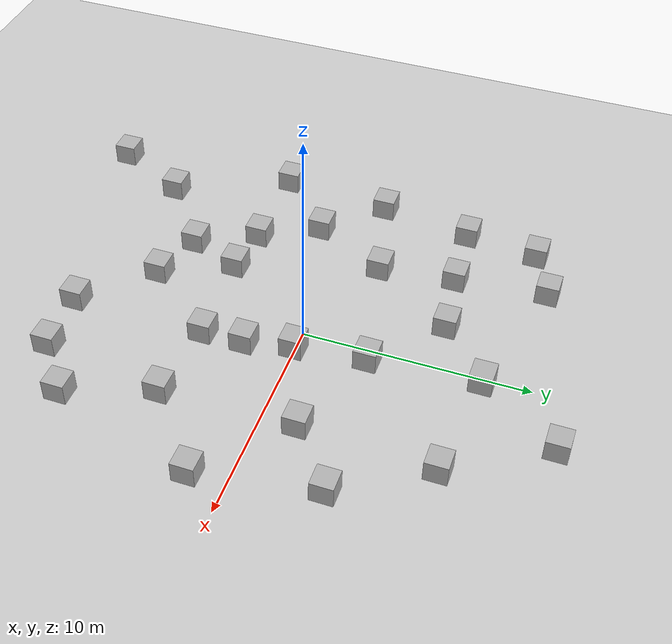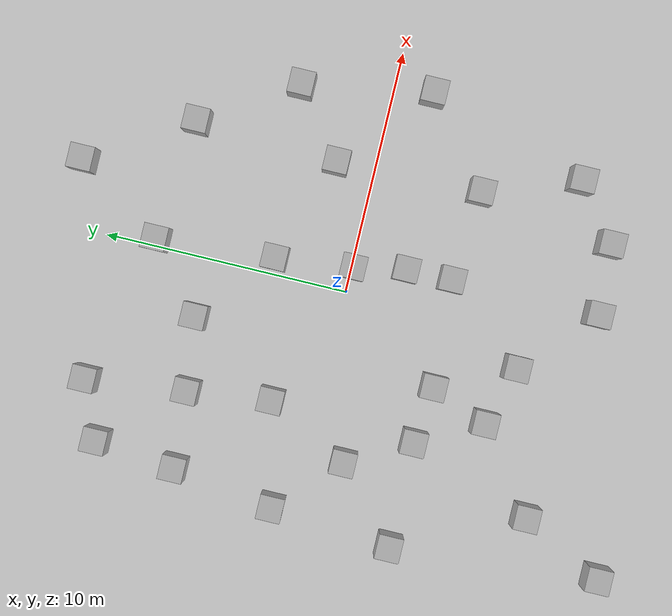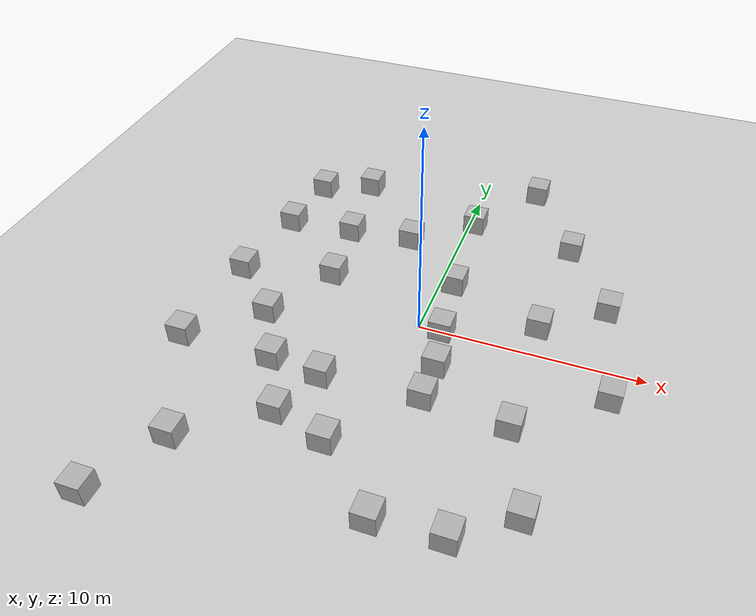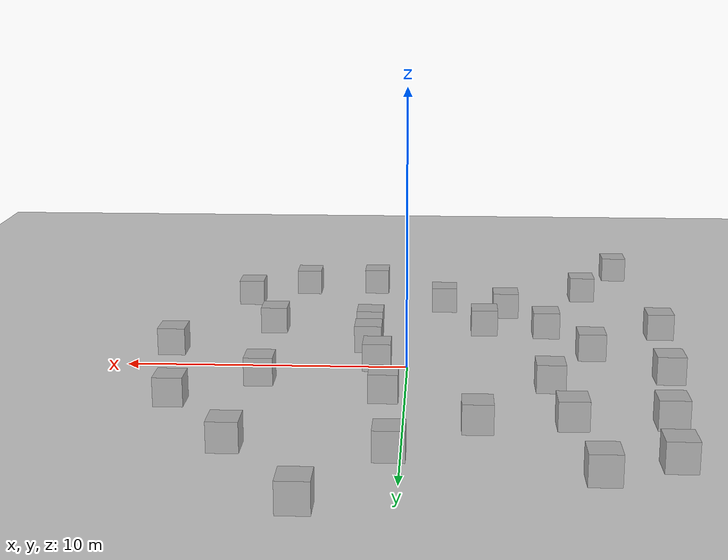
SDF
<sdf version='1.9'>
  <world name='empty'>
    <physics name='1ms' type='ignored'>
      <max_step_size>0.001</max_step_size>
      <real_time_factor>1</real_time_factor>
      <real_time_update_rate>1000</real_time_update_rate>
    </physics>
    <plugin name='gz::sim::systems::Physics' filename='ignition-gazebo-physics-system'/>
    <plugin name='gz::sim::systems::UserCommands' filename='ignition-gazebo-user-commands-system'/>
    <plugin name='gz::sim::systems::SceneBroadcaster' filename='ignition-gazebo-scene-broadcaster-system'/>
    <plugin name='gz::sim::systems::Contact' filename='ignition-gazebo-contact-system'/>
    <gravity>0 0 -9.8</gravity>
    <magnetic_field>6e-06 2.3e-05 -4.2e-05</magnetic_field>
    <atmosphere type='adiabatic'/>
    <scene>
      <ambient>0.4 0.4 0.4 1</ambient>
      <background>0.7 0.7 0.7 1</background>
      <shadows>true</shadows>
    </scene>
    <model name='ground_plane'>
      <static>true</static>
      <link name='link'>
        <collision name='collision'>
          <geometry>
            <plane>
              <normal>0 0 1</normal>
              <size>100 100</size>
            </plane>
          </geometry>
          <surface>
            <friction>
              <ode/>
            </friction>
            <bounce/>
            <contact/>
          </surface>
        </collision>
        <visual name='visual'>
          <geometry>
            <plane>
              <normal>0 0 1</normal>
              <size>100 100</size>
            </plane>
          </geometry>
          <material>
            <ambient>0.8 0.8 0.8 1</ambient>
            <diffuse>0.8 0.8 0.8 1</diffuse>
            <specular>0.8 0.8 0.8 1</specular>
          </material>
        </visual>
        <pose>0 0 0 0 -0 0</pose>
        <inertial>
          <pose>0 0 0 0 -0 0</pose>
          <mass>1</mass>
          <inertia>
            <ixx>1</ixx>
            <ixy>0</ixy>
            <ixz>0</ixz>
            <iyy>1</iyy>
            <iyz>0</iyz>
            <izz>1</izz>
          </inertia>
        </inertial>
        <enable_wind>false</enable_wind>
      </link>
      <pose>0 0 0 0 -0 0</pose>
      <self_collide>false</self_collide>
    </model>
    <model name='box_7_2'>
      <pose>1.49673 -4.03119 0.5 0 -0 0</pose>
      <link name='box_link'>
        <inertial>
          <inertia>
            <ixx>0.16666</ixx>
            <ixy>0</ixy>
            <ixz>0</ixz>
            <iyy>0.16666</iyy>
            <iyz>0</iyz>
            <izz>0.16666</izz>
          </inertia>
          <mass>1</mass>
        </inertial>
        <collision name='box_collision'>
          <geometry>
            <box>
              <size>1 1 1</size>
            </box>
          </geometry>
          <surface>
            <friction>
              <ode/>
            </friction>
            <bounce/>
            <contact/>
          </surface>
        </collision>
        <visual name='box_visual'>
          <geometry>
            <box>
              <size>1 1 1</size>
            </box>
          </geometry>
          <material>
            <ambient>0.3 0.3 0.3 1</ambient>
            <diffuse>0.7 0.7 0.7 1</diffuse>
            <specular>1 1 1 1</specular>
          </material>
        </visual>
      </link>
      <static>false</static>
      <self_collide>false</self_collide>
    </model>
    <model name='box'>
      <pose>1.47453 -2.15377 0.5 0 -0 0</pose>
      <link name='box_link'>
        <inertial>
          <inertia>
            <ixx>0.16666</ixx>
            <ixy>0</ixy>
            <ixz>0</ixz>
            <iyy>0.16666</iyy>
            <iyz>0</iyz>
            <izz>0.16666</izz>
          </inertia>
          <mass>1</mass>
          <pose>0 0 0 0 -0 0</pose>
        </inertial>
        <collision name='box_collision'>
          <geometry>
            <box>
              <size>1 1 1</size>
            </box>
          </geometry>
          <surface>
            <friction>
              <ode/>
            </friction>
            <bounce/>
            <contact/>
          </surface>
        </collision>
        <visual name='box_visual'>
          <geometry>
            <box>
              <size>1 1 1</size>
            </box>
          </geometry>
          <material>
            <ambient>0.3 0.3 0.3 1</ambient>
            <diffuse>0.7 0.7 0.7 1</diffuse>
            <specular>1 1 1 1</specular>
          </material>
        </visual>
        <pose>0 0 0 0 -0 0</pose>
        <enable_wind>false</enable_wind>
      </link>
      <static>false</static>
      <self_collide>false</self_collide>
    </model>
    <model name='box_0'>
      <pose>1.06167 -0.060778 0.5 0 -0 0</pose>
      <link name='box_link'>
        <inertial>
          <inertia>
            <ixx>0.16666</ixx>
            <ixy>0</ixy>
            <ixz>0</ixz>
            <iyy>0.16666</iyy>
            <iyz>0</iyz>
            <izz>0.16666</izz>
          </inertia>
          <mass>1</mass>
          <pose>0 0 0 0 -0 0</pose>
        </inertial>
        <collision name='box_collision'>
          <geometry>
            <box>
              <size>1 1 1</size>
            </box>
          </geometry>
          <surface>
            <friction>
              <ode/>
            </friction>
            <bounce/>
            <contact/>
          </surface>
        </collision>
        <visual name='box_visual'>
          <geometry>
            <box>
              <size>1 1 1</size>
            </box>
          </geometry>
          <material>
            <ambient>0.3 0.3 0.3 1</ambient>
            <diffuse>0.7 0.7 0.7 1</diffuse>
            <specular>1 1 1 1</specular>
          </material>
        </visual>
        <pose>0 0 0 0 -0 0</pose>
        <enable_wind>false</enable_wind>
      </link>
      <static>false</static>
      <self_collide>false</self_collide>
    </model>
    <model name='box_1'>
      <pose>0.702668 3.1009 0.5 0 -0 0</pose>
      <link name='box_link'>
        <inertial>
          <inertia>
            <ixx>0.16666</ixx>
            <ixy>0</ixy>
            <ixz>0</ixz>
            <iyy>0.16666</iyy>
            <iyz>0</iyz>
            <izz>0.16666</izz>
          </inertia>
          <mass>1</mass>
          <pose>0 0 0 0 -0 0</pose>
        </inertial>
        <collision name='box_collision'>
          <geometry>
            <box>
              <size>1 1 1</size>
            </box>
          </geometry>
          <surface>
            <friction>
              <ode/>
            </friction>
            <bounce/>
            <contact/>
          </surface>
        </collision>
        <visual name='box_visual'>
          <geometry>
            <box>
              <size>1 1 1</size>
            </box>
          </geometry>
          <material>
            <ambient>0.3 0.3 0.3 1</ambient>
            <diffuse>0.7 0.7 0.7 1</diffuse>
            <specular>1 1 1 1</specular>
          </material>
        </visual>
        <pose>0 0 0 0 -0 0</pose>
        <enable_wind>false</enable_wind>
      </link>
      <static>false</static>
      <self_collide>false</self_collide>
    </model>
    <model name='box_2'>
      <pose>-2.34659 5.69761 0.5 0 -0 0</pose>
      <link name='box_link'>
        <inertial>
          <inertia>
            <ixx>0.16666</ixx>
            <ixy>0</ixy>
            <ixz>0</ixz>
            <iyy>0.16666</iyy>
            <iyz>0</iyz>
            <izz>0.16666</izz>
          </inertia>
          <mass>1</mass>
          <pose>0 0 0 0 -0 0</pose>
        </inertial>
        <collision name='box_collision'>
          <geometry>
            <box>
              <size>1 1 1</size>
            </box>
          </geometry>
          <surface>
            <friction>
              <ode/>
            </friction>
            <bounce/>
            <contact/>
          </surface>
        </collision>
        <visual name='box_visual'>
          <geometry>
            <box>
              <size>1 1 1</size>
            </box>
          </geometry>
          <material>
            <ambient>0.3 0.3 0.3 1</ambient>
            <diffuse>0.7 0.7 0.7 1</diffuse>
            <specular>1 1 1 1</specular>
          </material>
        </visual>
        <pose>0 0 0 0 -0 0</pose>
        <enable_wind>false</enable_wind>
      </link>
      <static>false</static>
      <self_collide>false</self_collide>
    </model>
    <model name='box_3'>
      <pose>-4.91993 1.91379 0.5 0 -0 0</pose>
      <link name='box_link'>
        <inertial>
          <inertia>
            <ixx>0.16666</ixx>
            <ixy>0</ixy>
            <ixz>0</ixz>
            <iyy>0.16666</iyy>
            <iyz>0</iyz>
            <izz>0.16666</izz>
          </inertia>
          <mass>1</mass>
          <pose>0 0 0 0 -0 0</pose>
        </inertial>
        <collision name='box_collision'>
          <geometry>
            <box>
              <size>1 1 1</size>
            </box>
          </geometry>
          <surface>
            <friction>
              <ode/>
            </friction>
            <bounce/>
            <contact/>
          </surface>
        </collision>
        <visual name='box_visual'>
          <geometry>
            <box>
              <size>1 1 1</size>
            </box>
          </geometry>
          <material>
            <ambient>0.3 0.3 0.3 1</ambient>
            <diffuse>0.7 0.7 0.7 1</diffuse>
            <specular>1 1 1 1</specular>
          </material>
        </visual>
        <pose>0 0 0 0 -0 0</pose>
        <enable_wind>false</enable_wind>
      </link>
      <static>false</static>
      <self_collide>false</self_collide>
    </model>
    <model name='box_4'>
      <pose>-1.36374 -7.40387 0.5 0 -0 0</pose>
      <link name='box_link'>
        <inertial>
          <inertia>
            <ixx>0.16666</ixx>
            <ixy>0</ixy>
            <ixz>0</ixz>
            <iyy>0.16666</iyy>
            <iyz>0</iyz>
            <izz>0.16666</izz>
          </inertia>
          <mass>1</mass>
          <pose>0 0 0 0 -0 0</pose>
        </inertial>
        <collision name='box_collision'>
          <geometry>
            <box>
              <size>1 1 1</size>
            </box>
          </geometry>
          <surface>
            <friction>
              <ode/>
            </friction>
            <bounce/>
            <contact/>
          </surface>
        </collision>
        <visual name='box_visual'>
          <geometry>
            <box>
              <size>1 1 1</size>
            </box>
          </geometry>
          <material>
            <ambient>0.3 0.3 0.3 1</ambient>
            <diffuse>0.7 0.7 0.7 1</diffuse>
            <specular>1 1 1 1</specular>
          </material>
        </visual>
        <pose>0 0 0 0 -0 0</pose>
        <enable_wind>false</enable_wind>
      </link>
      <static>false</static>
      <self_collide>false</self_collide>
    </model>
    <model name='box_5'>
      <pose>-3.81354 -6.67417 0.5 0 -0 0</pose>
      <link name='box_link'>
        <inertial>
          <inertia>
            <ixx>0.16666</ixx>
            <ixy>0</ixy>
            <ixz>0</ixz>
            <iyy>0.16666</iyy>
            <iyz>0</iyz>
            <izz>0.16666</izz>
          </inertia>
          <mass>1</mass>
          <pose>0 0 0 0 -0 0</pose>
        </inertial>
        <collision name='box_collision'>
          <geometry>
            <box>
              <size>1 1 1</size>
            </box>
          </geometry>
          <surface>
            <friction>
              <ode/>
            </friction>
            <bounce/>
            <contact/>
          </surface>
        </collision>
        <visual name='box_visual'>
          <geometry>
            <box>
              <size>1 1 1</size>
            </box>
          </geometry>
          <material>
            <ambient>0.3 0.3 0.3 1</ambient>
            <diffuse>0.7 0.7 0.7 1</diffuse>
            <specular>1 1 1 1</specular>
          </material>
        </visual>
        <pose>0 0 0 0 -0 0</pose>
        <enable_wind>false</enable_wind>
      </link>
      <static>false</static>
      <self_collide>false</self_collide>
    </model>
    <model name='box_6'>
      <pose>-5.22989 -4.06244 0.5 0 0 -0</pose>
      <link name='box_link'>
        <inertial>
          <inertia>
            <ixx>0.16666</ixx>
            <ixy>0</ixy>
            <ixz>0</ixz>
            <iyy>0.16666</iyy>
            <iyz>0</iyz>
            <izz>0.16666</izz>
          </inertia>
          <mass>1</mass>
          <pose>0 0 0 0 -0 0</pose>
        </inertial>
        <collision name='box_collision'>
          <geometry>
            <box>
              <size>1 1 1</size>
            </box>
          </geometry>
          <surface>
            <friction>
              <ode/>
            </friction>
            <bounce/>
            <contact/>
          </surface>
        </collision>
        <visual name='box_visual'>
          <geometry>
            <box>
              <size>1 1 1</size>
            </box>
          </geometry>
          <material>
            <ambient>0.3 0.3 0.3 1</ambient>
            <diffuse>0.7 0.7 0.7 1</diffuse>
            <specular>1 1 1 1</specular>
          </material>
        </visual>
        <pose>0 0 0 0 -0 0</pose>
        <enable_wind>false</enable_wind>
      </link>
      <static>false</static>
      <self_collide>false</self_collide>
    </model>
    <model name='box_7'>
      <pose>5.3224 7.43893 0.5 0 0 -0</pose>
      <link name='box_link'>
        <inertial>
          <inertia>
            <ixx>0.16666</ixx>
            <ixy>0</ixy>
            <ixz>0</ixz>
            <iyy>0.16666</iyy>
            <iyz>0</iyz>
            <izz>0.16666</izz>
          </inertia>
          <mass>1</mass>
          <pose>0 0 0 0 -0 0</pose>
        </inertial>
        <collision name='box_collision'>
          <geometry>
            <box>
              <size>1 1 1</size>
            </box>
          </geometry>
          <surface>
            <friction>
              <ode/>
            </friction>
            <bounce/>
            <contact/>
          </surface>
        </collision>
        <visual name='box_visual'>
          <geometry>
            <box>
              <size>1 1 1</size>
            </box>
          </geometry>
          <material>
            <ambient>0.3 0.3 0.3 1</ambient>
            <diffuse>0.7 0.7 0.7 1</diffuse>
            <specular>1 1 1 1</specular>
          </material>
        </visual>
        <pose>0 0 0 0 -0 0</pose>
        <enable_wind>false</enable_wind>
      </link>
      <static>false</static>
      <self_collide>false</self_collide>
    </model>
    <model name='box_8'>
      <pose>-5.34342 5.31171 0.5 0 0 -0</pose>
      <link name='box_link'>
        <inertial>
          <inertia>
            <ixx>0.16666</ixx>
            <ixy>0</ixy>
            <ixz>0</ixz>
            <iyy>0.16666</iyy>
            <iyz>0</iyz>
            <izz>0.16666</izz>
          </inertia>
          <mass>1</mass>
          <pose>0 0 0 0 -0 0</pose>
        </inertial>
        <collision name='box_collision'>
          <geometry>
            <box>
              <size>1 1 1</size>
            </box>
          </geometry>
          <surface>
            <friction>
              <ode/>
            </friction>
            <bounce/>
            <contact/>
          </surface>
        </collision>
        <visual name='box_visual'>
          <geometry>
            <box>
              <size>1 1 1</size>
            </box>
          </geometry>
          <material>
            <ambient>0.3 0.3 0.3 1</ambient>
            <diffuse>0.7 0.7 0.7 1</diffuse>
            <specular>1 1 1 1</specular>
          </material>
        </visual>
        <pose>0 0 0 0 -0 0</pose>
        <enable_wind>false</enable_wind>
      </link>
      <static>false</static>
      <self_collide>false</self_collide>
    </model>
    <model name='box_9'>
      <pose>-6.67328 -1.49396 0.5 0 0 -0</pose>
      <link name='box_link'>
        <inertial>
          <inertia>
            <ixx>0.16666</ixx>
            <ixy>0</ixy>
            <ixz>0</ixz>
            <iyy>0.16666</iyy>
            <iyz>0</iyz>
            <izz>0.16666</izz>
          </inertia>
          <mass>1</mass>
          <pose>0 0 0 0 -0 0</pose>
        </inertial>
        <collision name='box_collision'>
          <geometry>
            <box>
              <size>1 1 1</size>
            </box>
          </geometry>
          <surface>
            <friction>
              <ode/>
            </friction>
            <bounce/>
            <contact/>
          </surface>
        </collision>
        <visual name='box_visual'>
          <geometry>
            <box>
              <size>1 1 1</size>
            </box>
          </geometry>
          <material>
            <ambient>0.3 0.3 0.3 1</ambient>
            <diffuse>0.7 0.7 0.7 1</diffuse>
            <specular>1 1 1 1</specular>
          </material>
        </visual>
        <pose>0 0 0 0 -0 0</pose>
        <enable_wind>false</enable_wind>
      </link>
      <static>false</static>
      <self_collide>false</self_collide>
    </model>
    <model name='box_10'>
      <pose>-2.88353 -4.31873 0.5 0 0 -0</pose>
      <link name='box_link'>
        <inertial>
          <inertia>
            <ixx>0.16666</ixx>
            <ixy>0</ixy>
            <ixz>0</ixz>
            <iyy>0.16666</iyy>
            <iyz>0</iyz>
            <izz>0.16666</izz>
          </inertia>
          <mass>1</mass>
          <pose>0 0 0 0 -0 0</pose>
        </inertial>
        <collision name='box_collision'>
          <geometry>
            <box>
              <size>1 1 1</size>
            </box>
          </geometry>
          <surface>
            <friction>
              <ode/>
            </friction>
            <bounce/>
            <contact/>
          </surface>
        </collision>
        <visual name='box_visual'>
          <geometry>
            <box>
              <size>1 1 1</size>
            </box>
          </geometry>
          <material>
            <ambient>0.3 0.3 0.3 1</ambient>
            <diffuse>0.7 0.7 0.7 1</diffuse>
            <specular>1 1 1 1</specular>
          </material>
        </visual>
        <pose>0 0 0 0 -0 0</pose>
        <enable_wind>false</enable_wind>
      </link>
      <static>false</static>
      <self_collide>false</self_collide>
    </model>
    <model name='box_11'>
      <pose>5.03771 1.58688 0.5 0 0 -0</pose>
      <link name='box_link'>
        <inertial>
          <inertia>
            <ixx>0.16666</ixx>
            <ixy>0</ixy>
            <ixz>0</ixz>
            <iyy>0.16666</iyy>
            <iyz>0</iyz>
            <izz>0.16666</izz>
          </inertia>
          <mass>1</mass>
          <pose>0 0 0 0 -0 0</pose>
        </inertial>
        <collision name='box_collision'>
          <geometry>
            <box>
              <size>1 1 1</size>
            </box>
          </geometry>
          <surface>
            <friction>
              <ode/>
            </friction>
            <bounce/>
            <contact/>
          </surface>
        </collision>
        <visual name='box_visual'>
          <geometry>
            <box>
              <size>1 1 1</size>
            </box>
          </geometry>
          <material>
            <ambient>0.3 0.3 0.3 1</ambient>
            <diffuse>0.7 0.7 0.7 1</diffuse>
            <specular>1 1 1 1</specular>
          </material>
        </visual>
        <pose>0 0 0 0 -0 0</pose>
        <enable_wind>false</enable_wind>
      </link>
      <static>false</static>
      <self_collide>false</self_collide>
    </model>
    <model name='box_12'>
      <pose>5.21526 -4.35682 0.5 0 0 -0</pose>
      <link name='box_link'>
        <inertial>
          <inertia>
            <ixx>0.16666</ixx>
            <ixy>0</ixy>
            <ixz>0</ixz>
            <iyy>0.16666</iyy>
            <iyz>0</iyz>
            <izz>0.16666</izz>
          </inertia>
          <mass>1</mass>
          <pose>0 0 0 0 -0 0</pose>
        </inertial>
        <collision name='box_collision'>
          <geometry>
            <box>
              <size>1 1 1</size>
            </box>
          </geometry>
          <surface>
            <friction>
              <ode/>
            </friction>
            <bounce/>
            <contact/>
          </surface>
        </collision>
        <visual name='box_visual'>
          <geometry>
            <box>
              <size>1 1 1</size>
            </box>
          </geometry>
          <material>
            <ambient>0.3 0.3 0.3 1</ambient>
            <diffuse>0.7 0.7 0.7 1</diffuse>
            <specular>1 1 1 1</specular>
          </material>
        </visual>
        <pose>0 0 0 0 -0 0</pose>
        <enable_wind>false</enable_wind>
      </link>
      <static>false</static>
      <self_collide>false</self_collide>
    </model>
    <model name='box_13'>
      <pose>7.72817 3.68323 0.5 0 0 -0</pose>
      <link name='box_link'>
        <inertial>
          <inertia>
            <ixx>0.16666</ixx>
            <ixy>0</ixy>
            <ixz>0</ixz>
            <iyy>0.16666</iyy>
            <iyz>0</iyz>
            <izz>0.16666</izz>
          </inertia>
          <mass>1</mass>
          <pose>0 0 0 0 -0 0</pose>
        </inertial>
        <collision name='box_collision'>
          <geometry>
            <box>
              <size>1 1 1</size>
            </box>
          </geometry>
          <surface>
            <friction>
              <ode/>
            </friction>
            <bounce/>
            <contact/>
          </surface>
        </collision>
        <visual name='box_visual'>
          <geometry>
            <box>
              <size>1 1 1</size>
            </box>
          </geometry>
          <material>
            <ambient>0.3 0.3 0.3 1</ambient>
            <diffuse>0.7 0.7 0.7 1</diffuse>
            <specular>1 1 1 1</specular>
          </material>
        </visual>
        <pose>0 0 0 0 -0 0</pose>
        <enable_wind>false</enable_wind>
      </link>
      <static>false</static>
      <self_collide>false</self_collide>
    </model>
    <model name='box_14'>
      <pose>0.33442 7.9409 0.5 0 0 -0</pose>
      <link name='box_link'>
        <inertial>
          <inertia>
            <ixx>0.16666</ixx>
            <ixy>0</ixy>
            <ixz>0</ixz>
            <iyy>0.16666</iyy>
            <iyz>0</iyz>
            <izz>0.16666</izz>
          </inertia>
          <mass>1</mass>
          <pose>0 0 0 0 -0 0</pose>
        </inertial>
        <collision name='box_collision'>
          <geometry>
            <box>
              <size>1 1 1</size>
            </box>
          </geometry>
          <surface>
            <friction>
              <ode/>
            </friction>
            <bounce/>
            <contact/>
          </surface>
        </collision>
        <visual name='box_visual'>
          <geometry>
            <box>
              <size>1 1 1</size>
            </box>
          </geometry>
          <material>
            <ambient>0.3 0.3 0.3 1</ambient>
            <diffuse>0.7 0.7 0.7 1</diffuse>
            <specular>1 1 1 1</specular>
          </material>
        </visual>
        <pose>0 0 0 0 -0 0</pose>
        <enable_wind>false</enable_wind>
      </link>
      <static>false</static>
      <self_collide>false</self_collide>
    </model>
    <model name='box_15'>
      <pose>-8.47786 5.09146 0.5 0 0 -0</pose>
      <link name='box_link'>
        <inertial>
          <inertia>
            <ixx>0.16666</ixx>
            <ixy>0</ixy>
            <ixz>0</ixz>
            <iyy>0.16666</iyy>
            <iyz>0</iyz>
            <izz>0.16666</izz>
          </inertia>
          <mass>1</mass>
          <pose>0 0 0 0 -0 0</pose>
        </inertial>
        <collision name='box_collision'>
          <geometry>
            <box>
              <size>1 1 1</size>
            </box>
          </geometry>
          <surface>
            <friction>
              <ode/>
            </friction>
            <bounce/>
            <contact/>
          </surface>
        </collision>
        <visual name='box_visual'>
          <geometry>
            <box>
              <size>1 1 1</size>
            </box>
          </geometry>
          <material>
            <ambient>0.3 0.3 0.3 1</ambient>
            <diffuse>0.7 0.7 0.7 1</diffuse>
            <specular>1 1 1 1</specular>
          </material>
        </visual>
        <pose>0 0 0 0 -0 0</pose>
        <enable_wind>false</enable_wind>
      </link>
      <static>false</static>
      <self_collide>false</self_collide>
    </model>
    <model name='box_16'>
      <pose>-9.10332 0.908886 0.5 -0 0 -0</pose>
      <link name='box_link'>
        <inertial>
          <inertia>
            <ixx>0.16666</ixx>
            <ixy>0</ixy>
            <ixz>0</ixz>
            <iyy>0.16666</iyy>
            <iyz>0</iyz>
            <izz>0.16666</izz>
          </inertia>
          <mass>1</mass>
          <pose>0 0 0 0 -0 0</pose>
        </inertial>
        <collision name='box_collision'>
          <geometry>
            <box>
              <size>1 1 1</size>
            </box>
          </geometry>
          <surface>
            <friction>
              <ode/>
            </friction>
            <bounce/>
            <contact/>
          </surface>
        </collision>
        <visual name='box_visual'>
          <geometry>
            <box>
              <size>1 1 1</size>
            </box>
          </geometry>
          <material>
            <ambient>0.3 0.3 0.3 1</ambient>
            <diffuse>0.7 0.7 0.7 1</diffuse>
            <specular>1 1 1 1</specular>
          </material>
        </visual>
        <pose>0 0 0 0 -0 0</pose>
        <enable_wind>false</enable_wind>
      </link>
      <static>false</static>
      <self_collide>false</self_collide>
    </model>
    <model name='box_17'>
      <pose>-8.83813 -12.513 0.5 0 0 -0</pose>
      <link name='box_link'>
        <inertial>
          <inertia>
            <ixx>0.16666</ixx>
            <ixy>0</ixy>
            <ixz>0</ixz>
            <iyy>0.16666</iyy>
            <iyz>0</iyz>
            <izz>0.16666</izz>
          </inertia>
          <mass>1</mass>
          <pose>0 0 0 0 -0 0</pose>
        </inertial>
        <collision name='box_collision'>
          <geometry>
            <box>
              <size>1 1 1</size>
            </box>
          </geometry>
          <surface>
            <friction>
              <ode/>
            </friction>
            <bounce/>
            <contact/>
          </surface>
        </collision>
        <visual name='box_visual'>
          <geometry>
            <box>
              <size>1 1 1</size>
            </box>
          </geometry>
          <material>
            <ambient>0.3 0.3 0.3 1</ambient>
            <diffuse>0.7 0.7 0.7 1</diffuse>
            <specular>1 1 1 1</specular>
          </material>
        </visual>
        <pose>0 0 0 0 -0 0</pose>
        <enable_wind>false</enable_wind>
      </link>
      <static>false</static>
      <self_collide>false</self_collide>
    </model>
    <model name='box_7_1'>
      <pose>-9.5369 -4.06878 0.5 0 0 -0</pose>
      <link name='box_link'>
        <inertial>
          <inertia>
            <ixx>0.16666</ixx>
            <ixy>0</ixy>
            <ixz>0</ixz>
            <iyy>0.16666</iyy>
            <iyz>0</iyz>
            <izz>0.16666</izz>
          </inertia>
          <mass>1</mass>
        </inertial>
        <collision name='box_collision'>
          <geometry>
            <box>
              <size>1 1 1</size>
            </box>
          </geometry>
          <surface>
            <friction>
              <ode/>
            </friction>
            <bounce/>
            <contact/>
          </surface>
        </collision>
        <visual name='box_visual'>
          <geometry>
            <box>
              <size>1 1 1</size>
            </box>
          </geometry>
          <material>
            <ambient>0.3 0.3 0.3 1</ambient>
            <diffuse>0.7 0.7 0.7 1</diffuse>
            <specular>1 1 1 1</specular>
          </material>
        </visual>
      </link>
      <static>false</static>
      <self_collide>false</self_collide>
    </model>
    <model name='box_7_3'>
      <pose>-5.81577 9.40143 0.5 0 0 -0</pose>
      <link name='box_link'>
        <inertial>
          <inertia>
            <ixx>0.16666</ixx>
            <ixy>0</ixy>
            <ixz>0</ixz>
            <iyy>0.16666</iyy>
            <iyz>0</iyz>
            <izz>0.16666</izz>
          </inertia>
          <mass>1</mass>
        </inertial>
        <collision name='box_collision'>
          <geometry>
            <box>
              <size>1 1 1</size>
            </box>
          </geometry>
          <surface>
            <friction>
              <ode/>
            </friction>
            <bounce/>
            <contact/>
          </surface>
        </collision>
        <visual name='box_visual'>
          <geometry>
            <box>
              <size>1 1 1</size>
            </box>
          </geometry>
          <material>
            <ambient>0.3 0.3 0.3 1</ambient>
            <diffuse>0.7 0.7 0.7 1</diffuse>
            <specular>1 1 1 1</specular>
          </material>
        </visual>
      </link>
      <static>false</static>
      <self_collide>false</self_collide>
    </model>
    <model name='box_7_4'>
      <pose>-8.13273 8.39399 0.5 0 0 -0</pose>
      <link name='box_link'>
        <inertial>
          <inertia>
            <ixx>0.16666</ixx>
            <ixy>0</ixy>
            <ixz>0</ixz>
            <iyy>0.16666</iyy>
            <iyz>0</iyz>
            <izz>0.16666</izz>
          </inertia>
          <mass>1</mass>
        </inertial>
        <collision name='box_collision'>
          <geometry>
            <box>
              <size>1 1 1</size>
            </box>
          </geometry>
          <surface>
            <friction>
              <ode/>
            </friction>
            <bounce/>
            <contact/>
          </surface>
        </collision>
        <visual name='box_visual'>
          <geometry>
            <box>
              <size>1 1 1</size>
            </box>
          </geometry>
          <material>
            <ambient>0.3 0.3 0.3 1</ambient>
            <diffuse>0.7 0.7 0.7 1</diffuse>
            <specular>1 1 1 1</specular>
          </material>
        </visual>
      </link>
      <static>false</static>
      <self_collide>false</self_collide>
    </model>
    <model name='box_7_5'>
      <pose>6.61398 -8.19432 0.5 0 0 -0</pose>
      <link name='box_link'>
        <inertial>
          <inertia>
            <ixx>0.16666</ixx>
            <ixy>0</ixy>
            <ixz>0</ixz>
            <iyy>0.16666</iyy>
            <iyz>0</iyz>
            <izz>0.16666</izz>
          </inertia>
          <mass>1</mass>
        </inertial>
        <collision name='box_collision'>
          <geometry>
            <box>
              <size>1 1 1</size>
            </box>
          </geometry>
          <surface>
            <friction>
              <ode/>
            </friction>
            <bounce/>
            <contact/>
          </surface>
        </collision>
        <visual name='box_visual'>
          <geometry>
            <box>
              <size>1 1 1</size>
            </box>
          </geometry>
          <material>
            <ambient>0.3 0.3 0.3 1</ambient>
            <diffuse>0.7 0.7 0.7 1</diffuse>
            <specular>1 1 1 1</specular>
          </material>
        </visual>
      </link>
      <static>false</static>
      <self_collide>false</self_collide>
    </model>
    <model name='box_7_6'>
      <pose>8.6567 -1.57743 0.5 0 0 -0</pose>
      <link name='box_link'>
        <inertial>
          <inertia>
            <ixx>0.16666</ixx>
            <ixy>0</ixy>
            <ixz>0</ixz>
            <iyy>0.16666</iyy>
            <iyz>0</iyz>
            <izz>0.16666</izz>
          </inertia>
          <mass>1</mass>
        </inertial>
        <collision name='box_collision'>
          <geometry>
            <box>
              <size>1 1 1</size>
            </box>
          </geometry>
          <surface>
            <friction>
              <ode/>
            </friction>
            <bounce/>
            <contact/>
          </surface>
        </collision>
        <visual name='box_visual'>
          <geometry>
            <box>
              <size>1 1 1</size>
            </box>
          </geometry>
          <material>
            <ambient>0.3 0.3 0.3 1</ambient>
            <diffuse>0.7 0.7 0.7 1</diffuse>
            <specular>1 1 1 1</specular>
          </material>
        </visual>
      </link>
      <static>false</static>
      <self_collide>false</self_collide>
    </model>
    <model name='box_7_7'>
      <pose>1.50561 -10.098 0.5 0 0 -0</pose>
      <link name='box_link'>
        <inertial>
          <inertia>
            <ixx>0.16666</ixx>
            <ixy>0</ixy>
            <ixz>0</ixz>
            <iyy>0.16666</iyy>
            <iyz>0</iyz>
            <izz>0.16666</izz>
          </inertia>
          <mass>1</mass>
        </inertial>
        <collision name='box_collision'>
          <geometry>
            <box>
              <size>1 1 1</size>
            </box>
          </geometry>
          <surface>
            <friction>
              <ode/>
            </friction>
            <bounce/>
            <contact/>
          </surface>
        </collision>
        <visual name='box_visual'>
          <geometry>
            <box>
              <size>1 1 1</size>
            </box>
          </geometry>
          <material>
            <ambient>0.3 0.3 0.3 1</ambient>
            <diffuse>0.7 0.7 0.7 1</diffuse>
            <specular>1 1 1 1</specular>
          </material>
        </visual>
      </link>
      <static>false</static>
      <self_collide>false</self_collide>
    </model>
    <model name='box_7_8'>
      <pose>4.37905 -9.91035 0.5 0 0 -0</pose>
      <link name='box_link'>
        <inertial>
          <inertia>
            <ixx>0.16666</ixx>
            <ixy>0</ixy>
            <ixz>0</ixz>
            <iyy>0.16666</iyy>
            <iyz>0</iyz>
            <izz>0.16666</izz>
          </inertia>
          <mass>1</mass>
        </inertial>
        <collision name='box_collision'>
          <geometry>
            <box>
              <size>1 1 1</size>
            </box>
          </geometry>
          <surface>
            <friction>
              <ode/>
            </friction>
            <bounce/>
            <contact/>
          </surface>
        </collision>
        <visual name='box_visual'>
          <geometry>
            <box>
              <size>1 1 1</size>
            </box>
          </geometry>
          <material>
            <ambient>0.3 0.3 0.3 1</ambient>
            <diffuse>0.7 0.7 0.7 1</diffuse>
            <specular>1 1 1 1</specular>
          </material>
        </visual>
      </link>
      <static>false</static>
      <self_collide>false</self_collide>
    </model>
    <model name='box_7_9'>
      <pose>-7.1036 -9.15819 0.5 0 0 -0</pose>
      <link name='box_link'>
        <inertial>
          <inertia>
            <ixx>0.16666</ixx>
            <ixy>0</ixy>
            <ixz>0</ixz>
            <iyy>0.16666</iyy>
            <iyz>0</iyz>
            <izz>0.16666</izz>
          </inertia>
          <mass>1</mass>
        </inertial>
        <collision name='box_collision'>
          <geometry>
            <box>
              <size>1 1 1</size>
            </box>
          </geometry>
          <surface>
            <friction>
              <ode/>
            </friction>
            <bounce/>
            <contact/>
          </surface>
        </collision>
        <visual name='box_visual'>
          <geometry>
            <box>
              <size>1 1 1</size>
            </box>
          </geometry>
          <material>
            <ambient>0.3 0.3 0.3 1</ambient>
            <diffuse>0.7 0.7 0.7 1</diffuse>
            <specular>1 1 1 1</specular>
          </material>
        </visual>
      </link>
      <static>false</static>
      <self_collide>false</self_collide>
    </model>
    <model name='box_7_10'>
      <pose>2.75928 11.5495 0.5 0 0 -0</pose>
      <link name='box_link'>
        <inertial>
          <inertia>
            <ixx>0.16666</ixx>
            <ixy>0</ixy>
            <ixz>0</ixz>
            <iyy>0.16666</iyy>
            <iyz>0</iyz>
            <izz>0.16666</izz>
          </inertia>
          <mass>1</mass>
        </inertial>
        <collision name='box_collision'>
          <geometry>
            <box>
              <size>1 1 1</size>
            </box>
          </geometry>
          <surface>
            <friction>
              <ode/>
            </friction>
            <bounce/>
            <contact/>
          </surface>
        </collision>
        <visual name='box_visual'>
          <geometry>
            <box>
              <size>1 1 1</size>
            </box>
          </geometry>
          <material>
            <ambient>0.3 0.3 0.3 1</ambient>
            <diffuse>0.7 0.7 0.7 1</diffuse>
            <specular>1 1 1 1</specular>
          </material>
        </visual>
      </link>
      <static>false</static>
      <self_collide>false</self_collide>
    </model>
    <light name='sun' type='directional'>
      <pose>0 0 10 0 -0 0</pose>
      <cast_shadows>true</cast_shadows>
      <intensity>1</intensity>
      <direction>-0.5 0.1 -0.9</direction>
      <diffuse>0.8 0.8 0.8 1</diffuse>
      <specular>0.2 0.2 0.2 1</specular>
      <attenuation>
        <range>1000</range>
        <linear>0.01</linear>
        <constant>0.90000000000000002</constant>
        <quadratic>0.001</quadratic>
      </attenuation>
      <spot>
        <inner_angle>0</inner_angle>
        <outer_angle>0</outer_angle>
        <falloff>0</falloff>
      </spot>
    </light>
  </world>
</sdf>
